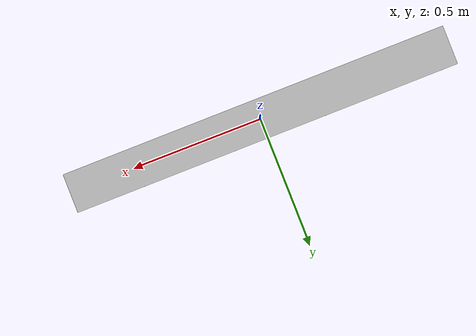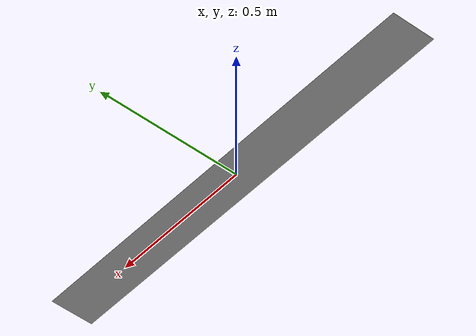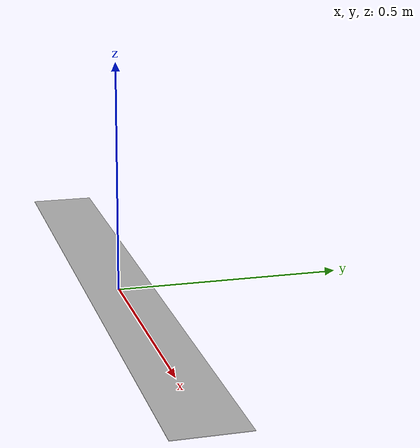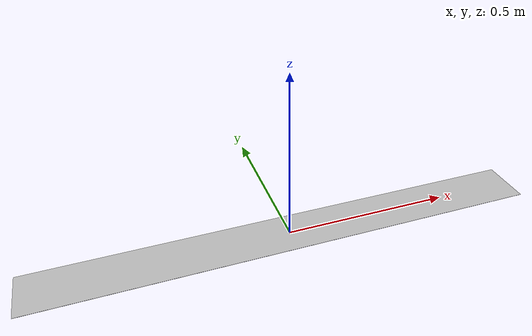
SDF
<?xml version="1.0"?>
<sdf version="1.5">
    <model name="line-15">
        <static>true</static>
        <link name="line-15_link">
            <pose>0.0 0.0 1e-3 0 0 0</pose>
            <visual name="visual_line-15">
                <cast_shadows>false</cast_shadows>
                <geometry>
                    <box>
                        <size>1.5 0.15 1e-3</size>
                    </box>
                </geometry>
                <material>
                    <script>
                        <uri>model://line-15/materials/scripts</uri>
                        <uri>model://line-15/materials/textures</uri>
                        <name>line/line-15</name>
                    </script>
                </material>
            </visual>
        </link>
    </model>
</sdf>
